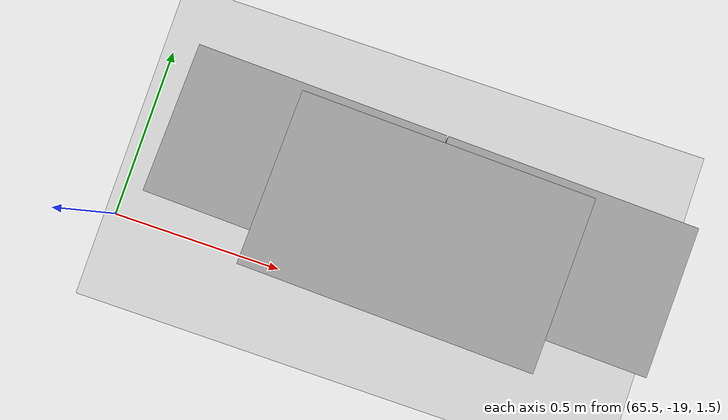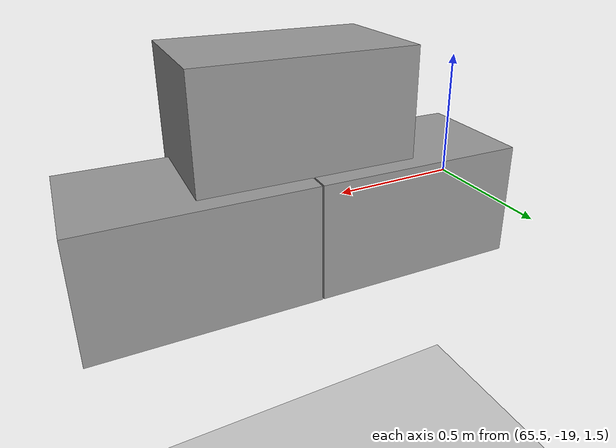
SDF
<sdf version="1.7">
 <world name="default">
  <model name="ground_plane">
   <static>1</static>
   <link name="link">
    <collision name="collision">
     <geometry><plane><normal>0 0 1</normal><size>100 100</size></plane></geometry>
     <surface>
      <contact><collide_bitmask>65535</collide_bitmask></contact>
      <friction><ode><mu>100</mu><mu2>50</mu2></ode></friction>
     </surface>
    </collision>
    <visual name="visual">
     <cast_shadows>0</cast_shadows>
     <geometry><plane><normal>0 0 1</normal><size>100 100</size></plane></geometry>
     <material>
      <script><uri>file://media/materials/scripts/gazebo.material</uri><name>Gazebo/Grey</name></script>
     </material>
    </visual>
   </link>
  </model>
  <model name="Add_Box_clone_clone_3_clone_15">
   <link name="link">
    <inertial>
     <mass>1</mass>
     <inertia>
      <ixx>0.166667</ixx>
      <ixy>0</ixy>
      <ixz>0</ixz>
      <iyy>0.166667</iyy>
      <iyz>0</iyz>
      <izz>0.166667</izz>
     </inertia>
    </inertial>
    <kinematic>1</kinematic>
    <gravity>0</gravity>
    <visual name="visual">
     <geometry><box><size>0.686 0.406 0.381</size></box></geometry>
     <material>
      <script><name>Gazebo/Grey</name><uri>file://media/materials/scripts/gazebo.material</uri></script>
      <shader type="pixel"><normal_map>__default__</normal_map></shader>
      <ambient>0.3 0.3 0.3 1</ambient>
      <diffuse>0.7 0.7 0.7 1</diffuse>
      <specular>0.01 0.01 0.01 1</specular>
      <emissive>0 0 0 1</emissive>
     </material>
    </visual>
    <collision name="collision">
     <geometry><box><size>1 1 1</size></box></geometry>
     <surface>
      <friction>
       <ode><mu>1</mu><mu2>1</mu2><fdir1>0 0 0</fdir1><slip1>0</slip1><slip2>0</slip2></ode>
       <torsional>
        <coefficient>1</coefficient>
        <patch_radius>0</patch_radius>
        <surface_radius>0</surface_radius>
        <use_patch_radius>1</use_patch_radius>
        <ode><slip>0</slip></ode>
       </torsional>
      </friction>
      <bounce><restitution_coefficient>0</restitution_coefficient><threshold>1e+06</threshold></bounce>
      <contact>
       <collide_without_contact>0</collide_without_contact>
       <collide_without_contact_bitmask>1</collide_without_contact_bitmask>
       <collide_bitmask>1</collide_bitmask>
       <ode>
        <soft_cfm>0</soft_cfm>
        <soft_erp>0.2</soft_erp>
        <kp>1e+13</kp>
        <kd>1</kd>
        <max_vel>0.01</max_vel>
        <min_depth>0</min_depth>
       </ode>
       <bullet>
        <split_impulse>1</split_impulse>
        <split_impulse_penetration_threshold>-0.01</split_impulse_penetration_threshold>
        <soft_cfm>0</soft_cfm>
        <soft_erp>0.2</soft_erp>
        <kp>1e+13</kp>
        <kd>1</kd>
       </bullet>
      </contact>
     </surface>
    </collision>
   </link>
   <link name="link_clone">
    <inertial>
     <mass>1</mass>
     <inertia>
      <ixx>0.166667</ixx>
      <ixy>0</ixy>
      <ixz>0</ixz>
      <iyy>0.166667</iyy>
      <iyz>0</iyz>
      <izz>0.166667</izz>
     </inertia>
    </inertial>
    <pose>-0.343354 -0.063316 0.354303 1e-05 -0 0</pose>
    <gravity>0</gravity>
    <visual name="visual">
     <geometry><box><size>0.686 0.406 0.381</size></box></geometry>
     <material>
      <script><name>Gazebo/Grey</name><uri>file://media/materials/scripts/gazebo.material</uri></script>
      <shader type="pixel"><normal_map>__default__</normal_map></shader>
      <ambient>0.3 0.3 0.3 1</ambient>
      <diffuse>0.7 0.7 0.7 1</diffuse>
      <specular>0.01 0.01 0.01 1</specular>
      <emissive>0 0 0 1</emissive>
     </material>
    </visual>
    <collision name="collision">
     <geometry><box><size>1 1 1</size></box></geometry>
     <surface>
      <friction>
       <ode><mu>1</mu><mu2>1</mu2><fdir1>0 0 0</fdir1><slip1>0</slip1><slip2>0</slip2></ode>
       <torsional>
        <coefficient>1</coefficient>
        <patch_radius>0</patch_radius>
        <surface_radius>0</surface_radius>
        <use_patch_radius>1</use_patch_radius>
        <ode><slip>0</slip></ode>
       </torsional>
      </friction>
      <bounce><restitution_coefficient>0</restitution_coefficient><threshold>1e+06</threshold></bounce>
      <contact>
       <collide_without_contact>0</collide_without_contact>
       <collide_without_contact_bitmask>1</collide_without_contact_bitmask>
       <collide_bitmask>1</collide_bitmask>
       <ode>
        <soft_cfm>0</soft_cfm>
        <soft_erp>0.2</soft_erp>
        <kp>1e+13</kp>
        <kd>1</kd>
        <max_vel>0.01</max_vel>
        <min_depth>0</min_depth>
       </ode>
       <bullet>
        <split_impulse>1</split_impulse>
        <split_impulse_penetration_threshold>-0.01</split_impulse_penetration_threshold>
        <soft_cfm>0</soft_cfm>
        <soft_erp>0.2</soft_erp>
        <kp>1e+13</kp>
        <kd>1</kd>
       </bullet>
      </contact>
     </surface>
    </collision>
   </link>
   <link name="link_clone_clone">
    <inertial>
     <mass>1</mass>
     <inertia>
      <ixx>0.166667</ixx>
      <ixy>0</ixy>
      <ixz>0</ixz>
      <iyy>0.166667</iyy>
      <iyz>0</iyz>
      <izz>0.166667</izz>
     </inertia>
    </inertial>
    <pose>-0.690786 -0.000183 -1e-05 2e-05 -0 0</pose>
    <gravity>0</gravity>
    <visual name="visual">
     <geometry><box><size>0.686 0.406 0.381</size></box></geometry>
     <material>
      <script><name>Gazebo/Grey</name><uri>file://media/materials/scripts/gazebo.material</uri></script>
      <shader type="pixel"><normal_map>__default__</normal_map></shader>
      <ambient>0.3 0.3 0.3 1</ambient>
      <diffuse>0.7 0.7 0.7 1</diffuse>
      <specular>0.01 0.01 0.01 1</specular>
      <emissive>0 0 0 1</emissive>
     </material>
    </visual>
    <collision name="collision">
     <geometry><box><size>1 1 1</size></box></geometry>
     <surface>
      <friction>
       <ode><mu>1</mu><mu2>1</mu2><fdir1>0 0 0</fdir1><slip1>0</slip1><slip2>0</slip2></ode>
       <torsional>
        <coefficient>1</coefficient>
        <patch_radius>0</patch_radius>
        <surface_radius>0</surface_radius>
        <use_patch_radius>1</use_patch_radius>
        <ode><slip>0</slip></ode>
       </torsional>
      </friction>
      <bounce><restitution_coefficient>0</restitution_coefficient><threshold>1e+06</threshold></bounce>
      <contact>
       <collide_without_contact>0</collide_without_contact>
       <collide_without_contact_bitmask>1</collide_without_contact_bitmask>
       <collide_bitmask>1</collide_bitmask>
       <ode>
        <soft_cfm>0</soft_cfm>
        <soft_erp>0.2</soft_erp>
        <kp>1e+13</kp>
        <kd>1</kd>
        <max_vel>0.01</max_vel>
        <min_depth>0</min_depth>
       </ode>
       <bullet>
        <split_impulse>1</split_impulse>
        <split_impulse_penetration_threshold>-0.01</split_impulse_penetration_threshold>
        <soft_cfm>0</soft_cfm>
        <soft_erp>0.2</soft_erp>
        <kp>1e+13</kp>
        <kd>1</kd>
       </bullet>
      </contact>
     </surface>
    </collision>
   </link>
   <static>0</static>
   <pose>66.6743 -18.7252 1.61518 0 0 -0.028231</pose>
  </model>
 </world>
</sdf>
